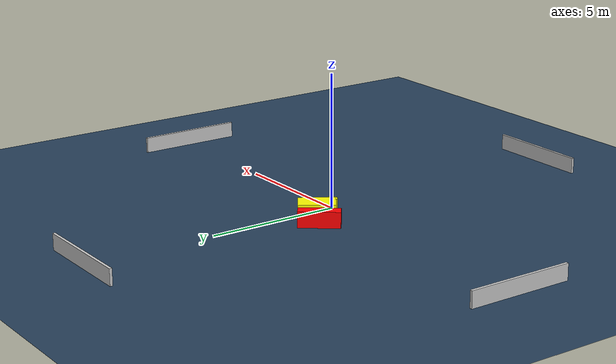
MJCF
<?xml version="1.0" ?>
<mujoco model="generated_environment">
  <option timestep="0.01" integrator="RK4" cone="elliptic"/>
  <default>
    <geom density="1"/>
  </default>
  <asset>
    <texture builtin="gradient" height="3072" name="skybox" rgb1="0.3 0.5 0.7" rgb2="0 0 0" type="skybox" width="512"/>
    <texture builtin="checker" height="300" name="groundplane" rgb1="0.2 0.3 0.4" rgb2="0.1 0.2 0.3" type="2d" width="300"/>
    <material name="groundplane" reflectance="0.2" texrepeat="5 5" texture="groundplane"/>
  </asset>
  <worldbody>
    <light dir="0 0 -1" directional="true" pos="0 0 1.5"/>
    <geom condim="3" friction="0.5 0.005 0.001" material="groundplane" name="floor" pos="0 0 0" size="0 0 0.05" type="plane"/>
    <body name="walls">
      <geom name="wall_1" condim="4" pos="-10.0 0.0 0.3" rgba="0.800000011920929 0.800000011920929 0.800000011920929 1.0" size="0.05 2.0 0.3" type="box"/>
      <geom name="wall_2" condim="4" pos="10.0 0.0 0.3" rgba="0.800000011920929 0.800000011920929 0.800000011920929 1.0" size="0.05 2.0 0.3" type="box"/>
      <geom name="wall_3" condim="4" pos="0.0 -10.0 0.3" rgba="0.800000011920929 0.800000011920929 0.800000011920929 1.0" size="2.0 0.05 0.3" type="box"/>
      <geom name="wall_4" condim="4" pos="0.0 10.0 0.3" rgba="0.800000011920929 0.800000011920929 0.800000011920929 1.0" size="2.0 0.05 0.3" type="box"/>
    </body>
    <body name="robot">
      <joint name="joint_x" type="slide" pos="0 0 0" axis="1 0 0"/>
      <joint name="joint_y" type="slide" pos="0 0 0" axis="0 1 0"/>
      <geom name="robot" type="cylinder" pos="0.0 0.0 0.2" size="0.2 0.2 0.0" mass="5.0" friction="1.0 0.005 0.0001" condim="4" rgba="1.0 1.0 0.0 1.0"/>
    </body>
    <body name="obstacle_1_movable">
      <geom name="obstacle_1_movable" condim="4" pos="-0.44107996056943294 0.9799616217179198 0.3" euler="0 0 325.8233547324762" friction="0.0 0.005 0.001" rgba="1.0 1.0 0.0 1.0" size="0.43695920712148995 0.676271820367208 0.3" type="box" mass="0.1"/>
      <joint type="free"/>
    </body>
    <body name="obstacle_2_static">
      <geom name="obstacle_2_static" condim="4" pos="-1.2602709065821192 1.4528264470978276 0.3" euler="0 0 321.6280960844565" friction="0.0 0.005 0.001" rgba="1.0 0.0 0.0 1.0" size="0.23166012560559632 0.7606136333160853 0.3" type="box"/>
    </body>
  </worldbody>
  <actuator>
    <motor name="actuator_x" joint="joint_x" gear="1" ctrlrange="-1 1"/>
    <motor name="actuator_y" joint="joint_y" gear="1" ctrlrange="-1 1"/>
  </actuator>
</mujoco>
